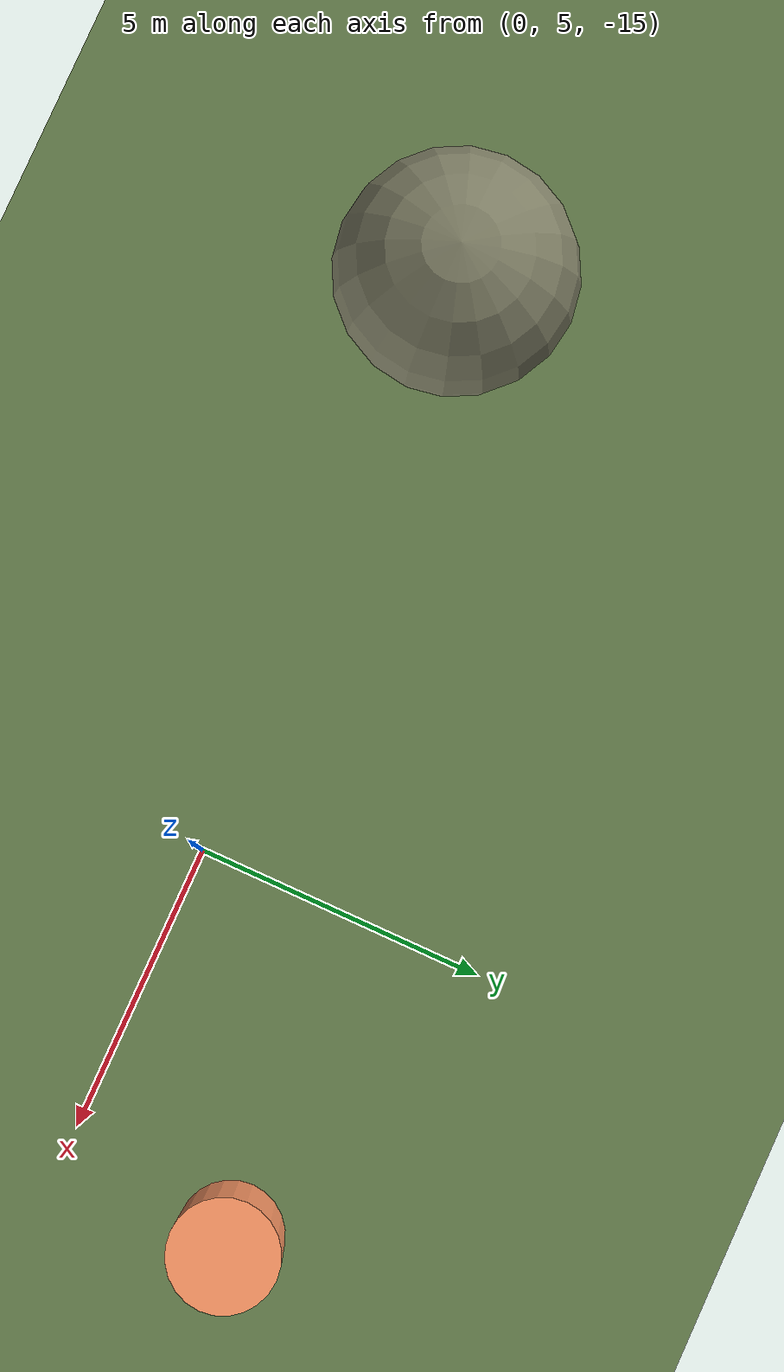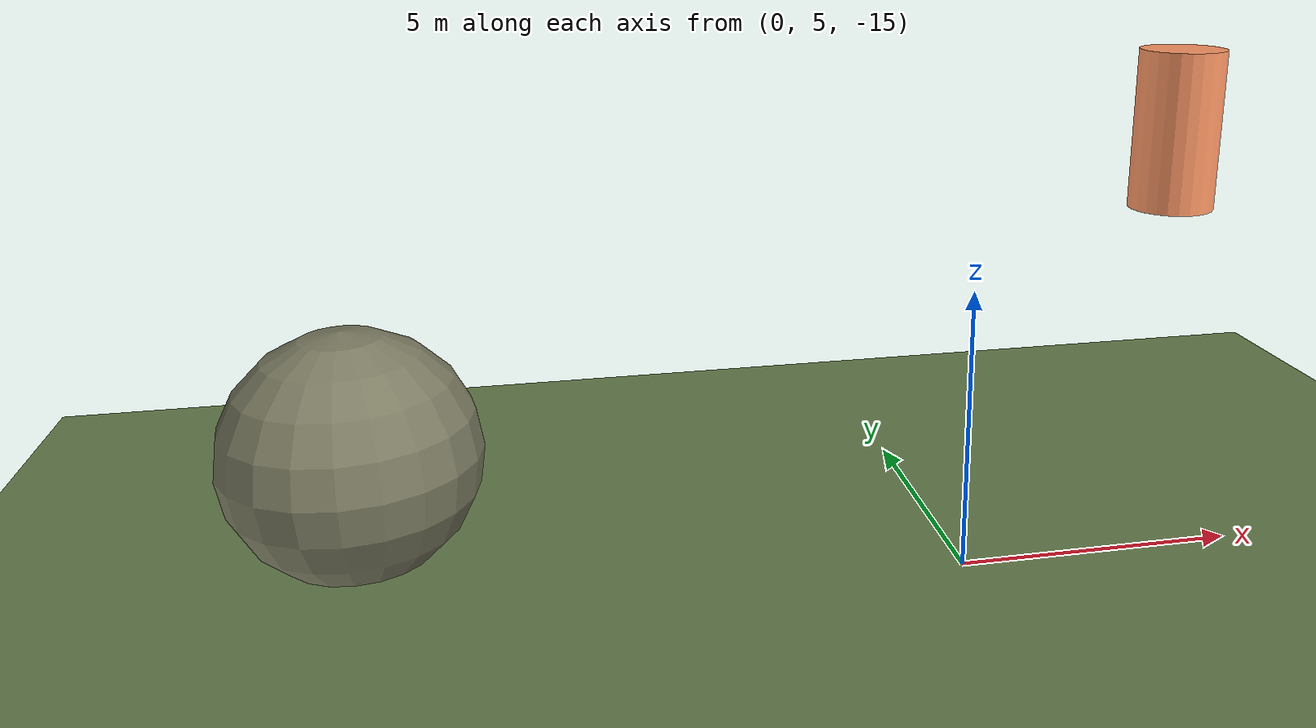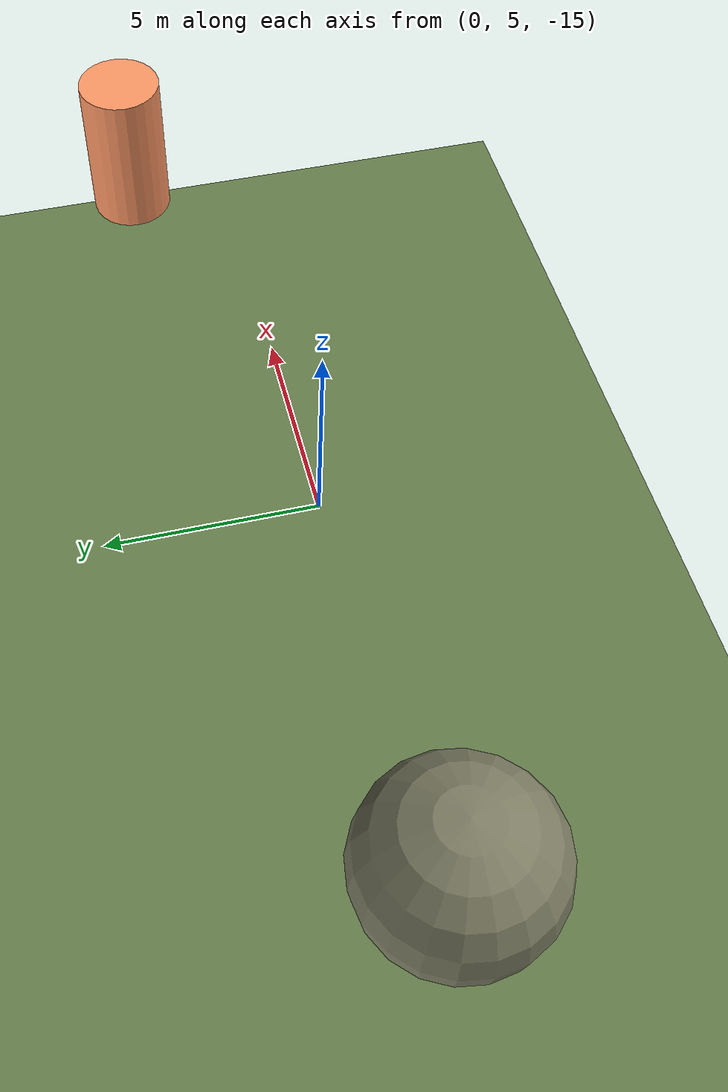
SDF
<?xml version="1.0" ?>
<sdf version="1.6">
  <world name="underwater_world">

    <!-- 基础设置 -->
    <gravity>0 0 -9.81</gravity>
    <magnetic_field>6e-06 2.3e-05 -4.2e-05</magnetic_field>
    <atmosphere type="adiabatic"/>

    <!-- 物理引擎 -->
    <physics name="default_physics" default="0" type="ode">
      <max_step_size>0.001</max_step_size>
      <real_time_factor>1</real_time_factor>
      <real_time_update_rate>1000</real_time_update_rate>
    </physics>

    <!-- 天空和环境 -->
    <scene>
      <grid>false</grid>
      <ambient>0.2 0.4 0.6 1</ambient>
      <background>0.1 0.3 0.5 1</background>
      <shadows>true</shadows>
    </scene>

    <!-- 光源 -->
    <light type="directional" name="sun">
      <pose>0 0 10 0 0 0</pose>
      <diffuse>0.5 0.7 1.0 1</diffuse>
      <specular>0.3 0.4 0.5 1</specular>
      <direction>-0.5 0.1 -0.9</direction>
    </light>

    <!-- 海底平面 -->
    <model name="ground_plane">
      <static>true</static>
      <link name="link">
        <collision name="collision">
          <geometry>
            <plane>
              <normal>0 0 1</normal>
              <size>200 200</size>
            </plane>
          </geometry>
          <surface>
            <friction>
              <ode>
                <mu>100</mu>
                <mu2>50</mu2>
              </ode>
            </friction>
          </surface>
        </collision>
        <visual name="visual">
          <geometry>
            <plane>
              <normal>0 0 1</normal>
              <size>200 200</size>
            </plane>
          </geometry>
          <material>
            <ambient>0.3 0.4 0.2 1</ambient>
            <diffuse>0.4 0.5 0.3 1</diffuse>
            <specular>0.1 0.1 0.1 1</specular>
          </material>
        </visual>
      </link>
      <pose>0 0 -15 0 0 0</pose>
    </model>

    <!-- 珊瑚礁装饰 -->
    <model name="coral_1">
      <pose>5 8 -8 0 0 0</pose>
      <static>true</static>
      <link name="link">
        <collision name="collision">
          <geometry>
            <cylinder>
              <radius>0.8</radius>
              <length>3.0</length>
            </cylinder>
          </geometry>
        </collision>
        <visual name="visual">
          <geometry>
            <cylinder>
              <radius>0.8</radius>
              <length>3.0</length>
            </cylinder>
          </geometry>
          <material>
            <ambient>1.0 0.5 0.3 1</ambient>
            <diffuse>1.0 0.6 0.4 1</diffuse>
            <specular>0.2 0.2 0.2 1</specular>
          </material>
        </visual>
      </link>
    </model>

    <!-- 岩石群 -->
    <model name="rock_formation_1">
      <pose>-10 5 -12 0 0 0</pose>
      <static>true</static>
      <link name="link">
        <collision name="collision">
          <geometry>
            <sphere>
              <radius>2.0</radius>
            </sphere>
          </geometry>
        </collision>
        <visual name="visual">
          <geometry>
            <sphere>
              <radius>2.0</radius>
            </sphere>
          </geometry>
          <material>
            <ambient>0.4 0.4 0.3 1</ambient>
            <diffuse>0.5 0.5 0.4 1</diffuse>
            <specular>0.2 0.2 0.2 1</specular>
          </material>
        </visual>
      </link>
    </model>

    <!-- 水下光源 -->
    <light type="point" name="underwater_light_1">
      <pose>10 10 -2 0 0 0</pose>
      <diffuse>0.7 0.8 1.0 1</diffuse>
      <specular>0.3 0.4 0.5 1</specular>
      <attenuation>
        <range>30</range>
        <constant>0.4</constant>
        <linear>0.05</linear>
        <quadratic>0.001</quadratic>
      </attenuation>
    </light>

    <!-- 关键修复：添加模型状态发布插件 -->
    <plugin name="gazebo_ros_state" filename="libgazebo_ros_state.so">
      <ros>
        <namespace>/gazebo</namespace>
      </ros>
      <update_rate>50.0</update_rate>
      <publish_link_states>true</publish_link_states>
      <publish_model_states>true</publish_model_states>
    </plugin>

  </world>
</sdf>
